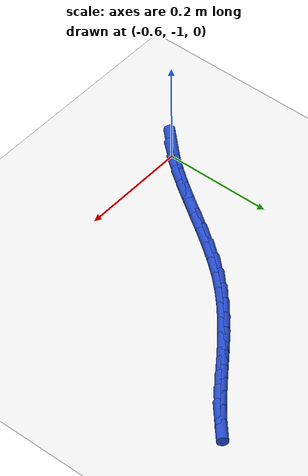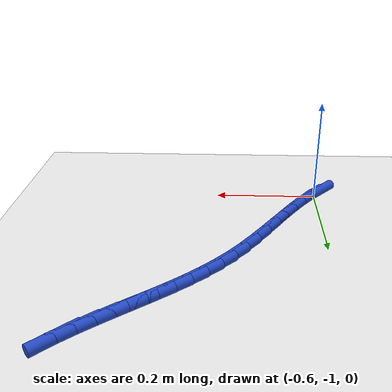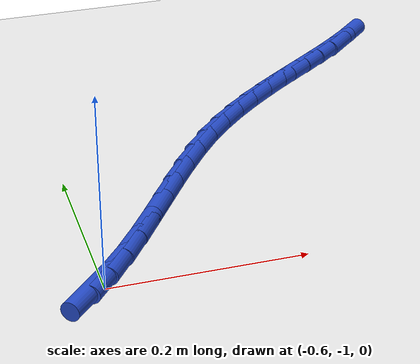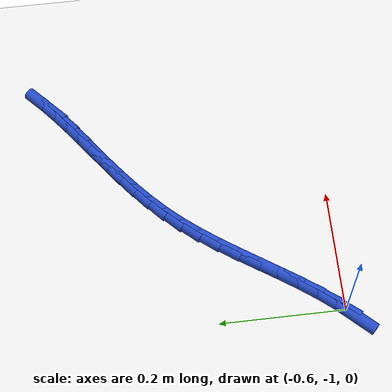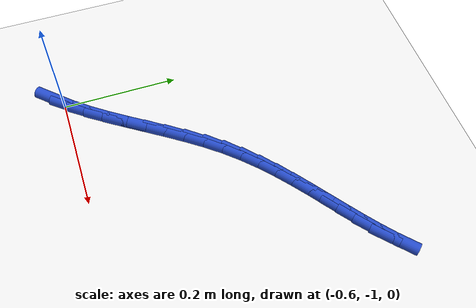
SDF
<sdf version="1.6">
 <world name="default">
  <model name="ground_plane">
   <static>1</static>
   <link name="link">
    <collision name="collision">
     <geometry><plane><normal>0 0 1</normal><size>100 100</size></plane></geometry>
     <surface><friction><ode><mu>100</mu><mu2>50</mu2></ode></friction></surface>
    </collision>
    <visual name="visual">
     <cast_shadows>0</cast_shadows>
     <geometry><plane><normal>0 0 1</normal><size>100 100</size></plane></geometry>
     <material>
      <script><uri>file://media/materials/scripts/gazebo.material</uri><name>Gazebo/WhiteGlow</name></script>
     </material>
    </visual>
   </link>
  </model>
  <model name="line">
   <link name="link_201">
    <pose>-0.6129155324827856 -1.0100066419305862 0.01 0 1.57 0.8185923004698326</pose>
    <collision name="collision">
     <geometry><cylinder><radius>0.01</radius><length>0.08</length></cylinder></geometry>
    </collision>
    <visual name="visual">
     <material>
      <script><name>Gazebo/Blue</name><uri>file://media/materials/scripts/gazebo.material</uri></script>
     </material>
     <geometry><cylinder><radius>0.01</radius><length>0.08</length></cylinder></geometry>
    </visual>
   </link>
   <link name="link_202">
    <pose>-0.5917070546129185 -0.9873412744948279 0.01 0 1.57 0.8896817933745099</pose>
    <collision name="collision">
     <geometry><cylinder><radius>0.01</radius><length>0.08</length></cylinder></geometry>
    </collision>
    <visual name="visual">
     <material>
      <script><name>Gazebo/Blue</name><uri>file://media/materials/scripts/gazebo.material</uri></script>
     </material>
     <geometry><cylinder><radius>0.01</radius><length>0.08</length></cylinder></geometry>
    </visual>
   </link>
   <link name="link_203">
    <pose>-0.5711724791711399 -0.9620057862434652 0.01 0 1.57 0.9386176542219876</pose>
    <collision name="collision">
     <geometry><cylinder><radius>0.01</radius><length>0.08</length></cylinder></geometry>
    </collision>
    <visual name="visual">
     <material>
      <script><name>Gazebo/Blue</name><uri>file://media/materials/scripts/gazebo.material</uri></script>
     </material>
     <geometry><cylinder><radius>0.01</radius><length>0.08</length></cylinder></geometry>
    </visual>
   </link>
   <link name="link_204">
    <pose>-0.551103378308023 -0.934606084760603 0.01 0 1.57 0.9691640313650434</pose>
    <collision name="collision">
     <geometry><cylinder><radius>0.01</radius><length>0.08</length></cylinder></geometry>
    </collision>
    <visual name="visual">
     <material>
      <script><name>Gazebo/Blue</name><uri>file://media/materials/scripts/gazebo.material</uri></script>
     </material>
     <geometry><cylinder><radius>0.01</radius><length>0.08</length></cylinder></geometry>
    </visual>
   </link>
   <link name="link_205">
    <pose>-0.531291324174141 -0.9057480776303465 0.01 0 1.57 0.9838080751942488</pose>
    <collision name="collision">
     <geometry><cylinder><radius>0.01</radius><length>0.08</length></cylinder></geometry>
    </collision>
    <visual name="visual">
     <material>
      <script><name>Gazebo/Blue</name><uri>file://media/materials/scripts/gazebo.material</uri></script>
     </material>
     <geometry><cylinder><radius>0.01</radius><length>0.08</length></cylinder></geometry>
    </visual>
   </link>
   <link name="link_206">
    <pose>-0.5115278889200667 -0.8760376724367999 0.01 0 1.57 0.9839042825440547</pose>
    <collision name="collision">
     <geometry><cylinder><radius>0.01</radius><length>0.08</length></cylinder></geometry>
    </collision>
    <visual name="visual">
     <material>
      <script><name>Gazebo/Blue</name><uri>file://media/materials/scripts/gazebo.material</uri></script>
     </material>
     <geometry><cylinder><radius>0.01</radius><length>0.08</length></cylinder></geometry>
    </visual>
   </link>
   <link name="link_207">
    <pose>-0.4916046446963733 -0.8460807767640683 0.01 0 1.57 0.9698129580558135</pose>
    <collision name="collision">
     <geometry><cylinder><radius>0.01</radius><length>0.08</length></cylinder></geometry>
    </collision>
    <visual name="visual">
     <material>
      <script><name>Gazebo/Blue</name><uri>file://media/materials/scripts/gazebo.material</uri></script>
     </material>
     <geometry><cylinder><radius>0.01</radius><length>0.08</length></cylinder></geometry>
    </visual>
   </link>
   <link name="link_208">
    <pose>-0.47131316365363357 -0.8164832981962561 0.01 0 1.57 0.9409783080944252</pose>
    <collision name="collision">
     <geometry><cylinder><radius>0.01</radius><length>0.08</length></cylinder></geometry>
    </collision>
    <visual name="visual">
     <material>
      <script><name>Gazebo/Blue</name><uri>file://media/materials/scripts/gazebo.material</uri></script>
     </material>
     <geometry><cylinder><radius>0.01</radius><length>0.08</length></cylinder></geometry>
    </visual>
   </link>
   <link name="link_209">
    <pose>-0.4504450179424214 -0.7878511443174695 0.01 0 1.57 0.8959539742874529</pose>
    <collision name="collision">
     <geometry><cylinder><radius>0.01</radius><length>0.08</length></cylinder></geometry>
    </collision>
    <visual name="visual">
     <material>
      <script><name>Gazebo/Blue</name><uri>file://media/materials/scripts/gazebo.material</uri></script>
     </material>
     <geometry><cylinder><radius>0.01</radius><length>0.08</length></cylinder></geometry>
    </visual>
   </link>
   <link name="link_210">
    <pose>-0.4287917797133095 -0.7607902227118128 0.01 0 1.57 0.8357048876026437</pose>
    <collision name="collision">
     <geometry><cylinder><radius>0.01</radius><length>0.08</length></cylinder></geometry>
    </collision>
    <visual name="visual">
     <material>
      <script><name>Gazebo/Blue</name><uri>file://media/materials/scripts/gazebo.material</uri></script>
     </material>
     <geometry><cylinder><radius>0.01</radius><length>0.08</length></cylinder></geometry>
    </visual>
   </link>
   <link name="link_211">
    <pose>-0.40619493260948086 -0.7357972668431534 0.01 0 1.57 0.7770634736924489</pose>
    <collision name="collision">
     <geometry><cylinder><radius>0.01</radius><length>0.08</length></cylinder></geometry>
    </collision>
    <visual name="visual">
     <material>
      <script><name>Gazebo/Blue</name><uri>file://media/materials/scripts/gazebo.material</uri></script>
     </material>
     <geometry><cylinder><radius>0.01</radius><length>0.08</length></cylinder></geometry>
    </visual>
   </link>
   <link name="link_212">
    <pose>-0.3827731517359384 -0.7127626942268879 0.01 0 1.57 0.7274075933525758</pose>
    <collision name="collision">
     <geometry><cylinder><radius>0.01</radius><length>0.08</length></cylinder></geometry>
    </collision>
    <visual name="visual">
     <material>
      <script><name>Gazebo/Blue</name><uri>file://media/materials/scripts/gazebo.material</uri></script>
     </material>
     <geometry><cylinder><radius>0.01</radius><length>0.08</length></cylinder></geometry>
    </visual>
   </link>
   <link name="link_213">
    <pose>-0.35874078690866046 -0.6913676478836327 0.01 0 1.57 0.6878740958200315</pose>
    <collision name="collision">
     <geometry><cylinder><radius>0.01</radius><length>0.08</length></cylinder></geometry>
    </collision>
    <visual name="visual">
     <material>
      <script><name>Gazebo/Blue</name><uri>file://media/materials/scripts/gazebo.material</uri></script>
     </material>
     <geometry><cylinder><radius>0.01</radius><length>0.08</length></cylinder></geometry>
    </visual>
   </link>
   <link name="link_214">
    <pose>-0.33431227833467153 -0.6712930731167565 0.01 0 1.57 0.6593162497805951</pose>
    <collision name="collision">
     <geometry><cylinder><radius>0.01</radius><length>0.08</length></cylinder></geometry>
    </collision>
    <visual name="visual">
     <material>
      <script><name>Gazebo/Blue</name><uri>file://media/materials/scripts/gazebo.material</uri></script>
     </material>
     <geometry><cylinder><radius>0.01</radius><length>0.08</length></cylinder></geometry>
    </visual>
   </link>
   <link name="link_215">
    <pose>-0.3097020662209954 -0.6522199152296277 0.01 0 1.57 0.642398418342258</pose>
    <collision name="collision">
     <geometry><cylinder><radius>0.01</radius><length>0.08</length></cylinder></geometry>
    </collision>
    <visual name="visual">
     <material>
      <script><name>Gazebo/Blue</name><uri>file://media/materials/scripts/gazebo.material</uri></script>
     </material>
     <geometry><cylinder><radius>0.01</radius><length>0.08</length></cylinder></geometry>
    </visual>
   </link>
   <link name="link_216">
    <pose>-0.28512459077465807 -0.6338291195256159 0.01 0 1.57 0.63768267011918</pose>
    <collision name="collision">
     <geometry><cylinder><radius>0.01</radius><length>0.08</length></cylinder></geometry>
    </collision>
    <visual name="visual">
     <material>
      <script><name>Gazebo/Blue</name><uri>file://media/materials/scripts/gazebo.material</uri></script>
     </material>
     <geometry><cylinder><radius>0.01</radius><length>0.08</length></cylinder></geometry>
    </visual>
   </link>
   <link name="link_217">
    <pose>-0.26079429220268324 -0.6158016313080888 0.01 0 1.57 0.6456888147293217</pose>
    <collision name="collision">
     <geometry><cylinder><radius>0.01</radius><length>0.08</length></cylinder></geometry>
    </collision>
    <visual name="visual">
     <material>
      <script><name>Gazebo/Blue</name><uri>file://media/materials/scripts/gazebo.material</uri></script>
     </material>
     <geometry><cylinder><radius>0.01</radius><length>0.08</length></cylinder></geometry>
    </visual>
   </link>
   <link name="link_218">
    <pose>-0.23692561071209547 -0.5978183958804159 0.01 0 1.57 0.6669085776185537</pose>
    <collision name="collision">
     <geometry><cylinder><radius>0.01</radius><length>0.08</length></cylinder></geometry>
    </collision>
    <visual name="visual">
     <material>
      <script><name>Gazebo/Blue</name><uri>file://media/materials/scripts/gazebo.material</uri></script>
     </material>
     <geometry><cylinder><radius>0.01</radius><length>0.08</length></cylinder></geometry>
    </visual>
   </link>
   <link name="link_219">
    <pose>-0.21373298650991926 -0.5795603585459652 0.01 0 1.57 0.7017566835272245</pose>
    <collision name="collision">
     <geometry><cylinder><radius>0.01</radius><length>0.08</length></cylinder></geometry>
    </collision>
    <visual name="visual">
     <material>
      <script><name>Gazebo/Blue</name><uri>file://media/materials/scripts/gazebo.material</uri></script>
     </material>
     <geometry><cylinder><radius>0.01</radius><length>0.08</length></cylinder></geometry>
    </visual>
   </link>
   <link name="link_220">
    <pose>-0.19143085980317923 -0.5607084646081057 0.01 0 1.57 0.7504438019299956</pose>
    <collision name="collision">
     <geometry><cylinder><radius>0.01</radius><length>0.08</length></cylinder></geometry>
    </collision>
    <visual name="visual">
     <material>
      <script><name>Gazebo/Blue</name><uri>file://media/materials/scripts/gazebo.material</uri></script>
     </material>
     <geometry><cylinder><radius>0.01</radius><length>0.08</length></cylinder></geometry>
    </visual>
   </link>
  </model>
 </world>
</sdf>
